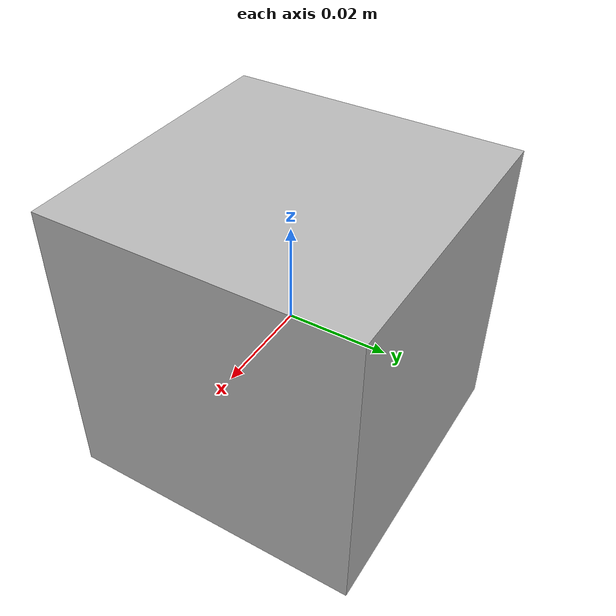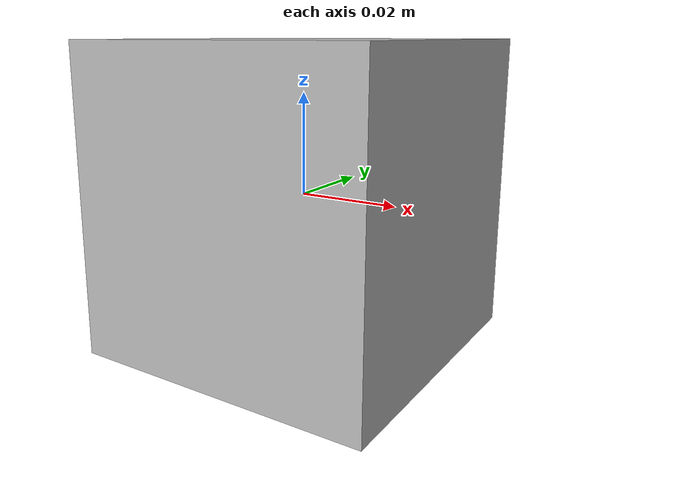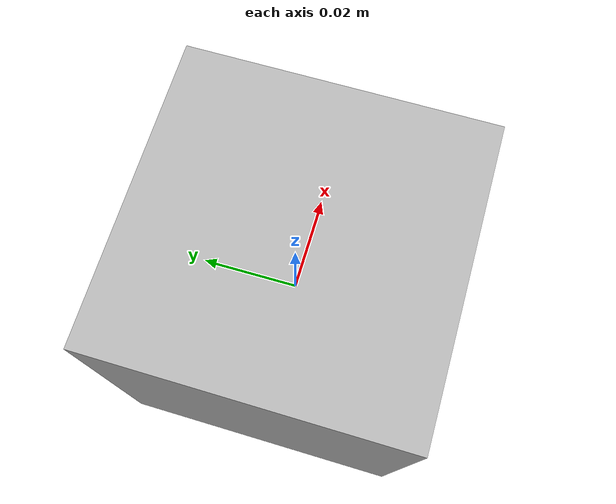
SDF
<?xml version="1.0"?>
<sdf version="1.7">
  <model name="numbered_cube">
    <link name="numbered_cube">
      <inertial>
        <pose>0 0 0 0 0 0</pose>
        <mass>0.05</mass>
        <inertia>
          <ixx>0.00003</ixx>
          <iyy>0.00003</iyy>
          <izz>0.00003</izz>
          <ixy>0.0</ixy>
          <ixz>0.0</ixz>
          <iyz>0.0</iyz>
        </inertia>
      </inertial>

      <!-- Face 1: Red (+X) -->
      <visual name="face_1_red">
        <pose>0 0 0 0 0 0</pose>
        <geometry>
          <mesh>
            <uri>meshes/face_1_red.obj</uri>
          </mesh>
        </geometry>
      </visual>

      <!-- Face 2: Blue (-X) -->
      <visual name="face_2_blue">
        <pose>0 0 0 0 0 0</pose>
        <geometry>
          <mesh>
            <uri>meshes/face_2_blue.obj</uri>
          </mesh>
        </geometry>
      </visual>

      <!-- Face 3: Green (+Y) -->
      <visual name="face_3_green">
        <pose>0 0 0 0 0 0</pose>
        <geometry>
          <mesh>
            <uri>meshes/face_3_green.obj</uri>
          </mesh>
        </geometry>
      </visual>

      <!-- Face 4: Yellow (-Y) -->
      <visual name="face_4_yellow">
        <pose>0 0 0 0 0 0</pose>
        <geometry>
          <mesh>
            <uri>meshes/face_4_yellow.obj</uri>
          </mesh>
        </geometry>
      </visual>

      <!-- Face 5: Orange (+Z) -->
      <visual name="face_5_orange">
        <pose>0 0 0 0 0 0</pose>
        <geometry>
          <mesh>
            <uri>meshes/face_5_orange.obj</uri>
          </mesh>
        </geometry>
      </visual>

      <!-- Face 6: Purple (-Z) -->
      <visual name="face_6_purple">
        <pose>0 0 0 0 0 0</pose>
        <geometry>
          <mesh>
            <uri>meshes/face_6_purple.obj</uri>
          </mesh>
        </geometry>
      </visual>

      <!-- Single box collision for the whole cube -->
      <collision name="cube_collision">
        <pose>0 0 0 0 0 0</pose>
        <geometry>
          <box>
            <size>0.06 0.06 0.06</size>
          </box>
        </geometry>
        <drake:proximity_properties>
          <drake:mu_static>0.8</drake:mu_static>
          <drake:mu_dynamic>0.5</drake:mu_dynamic>
        </drake:proximity_properties>
      </collision>
    </link>
  </model>
</sdf>
